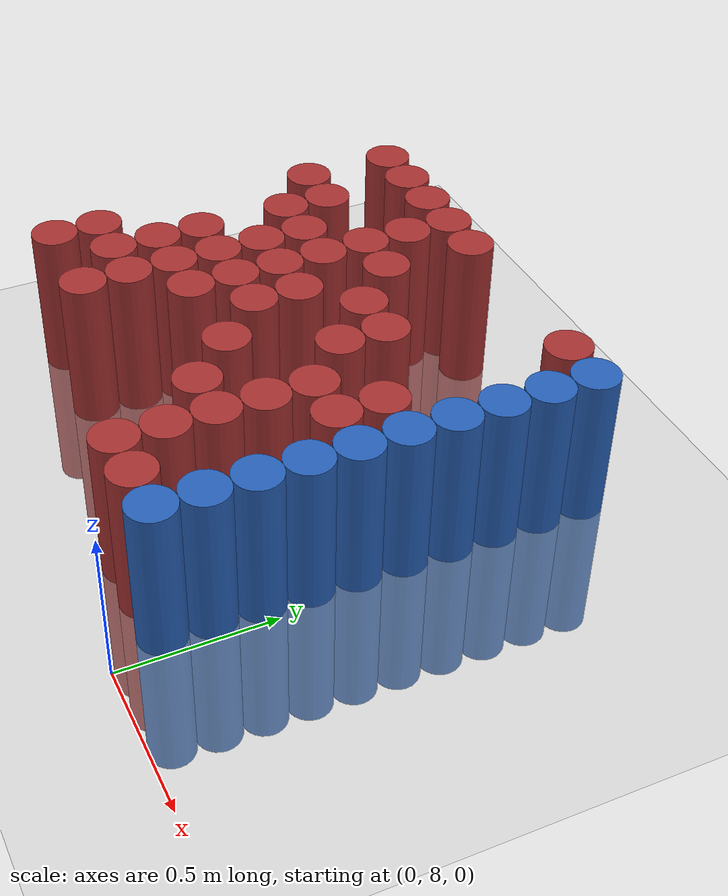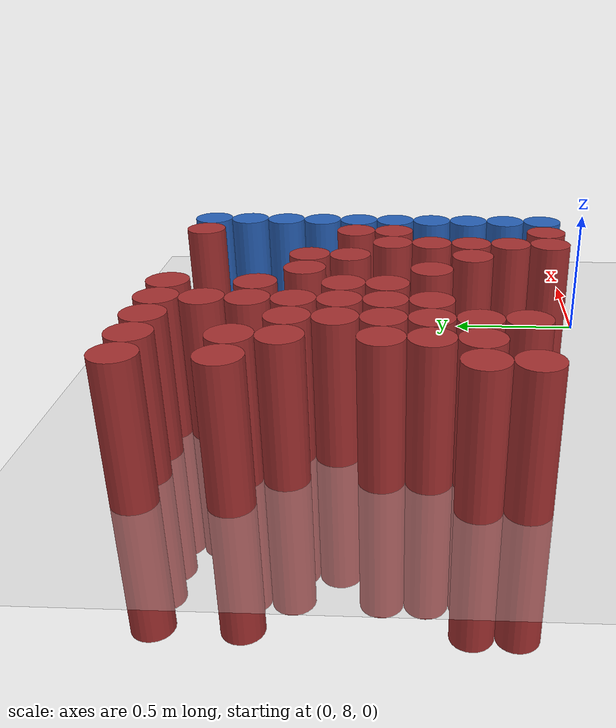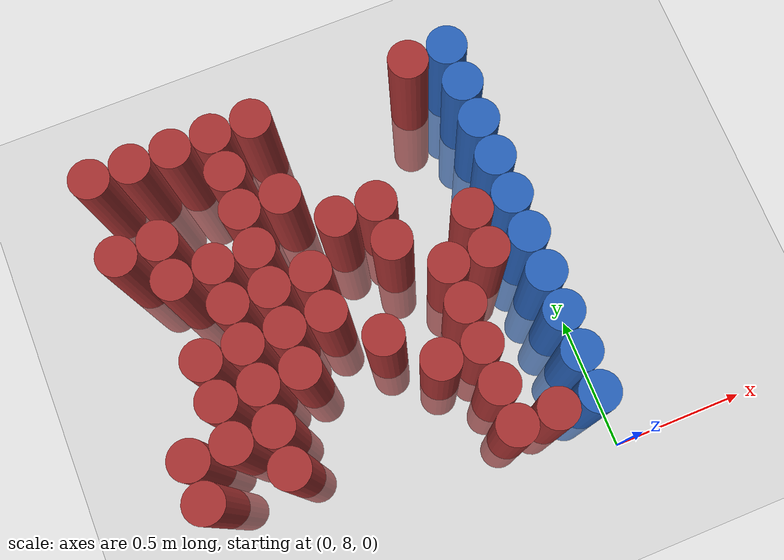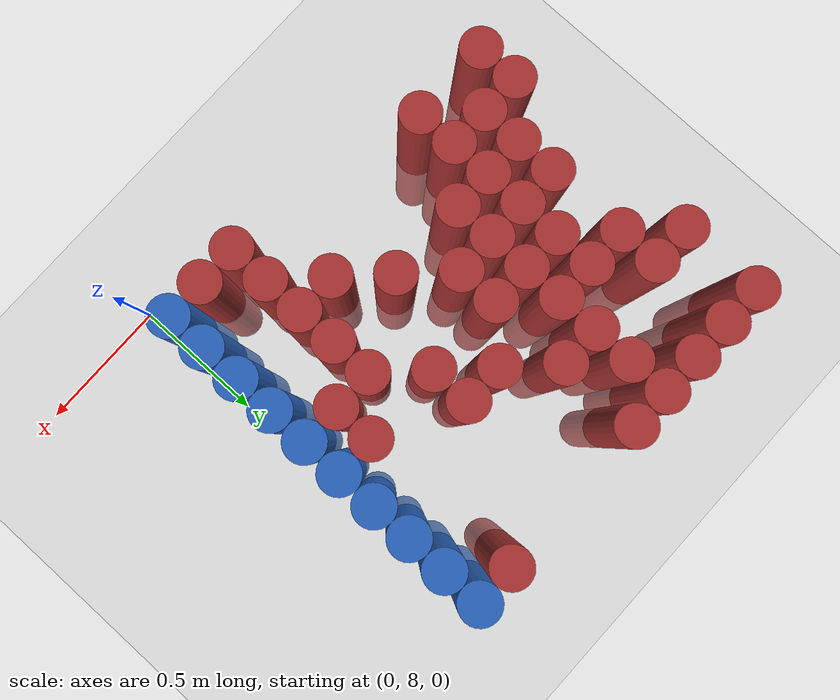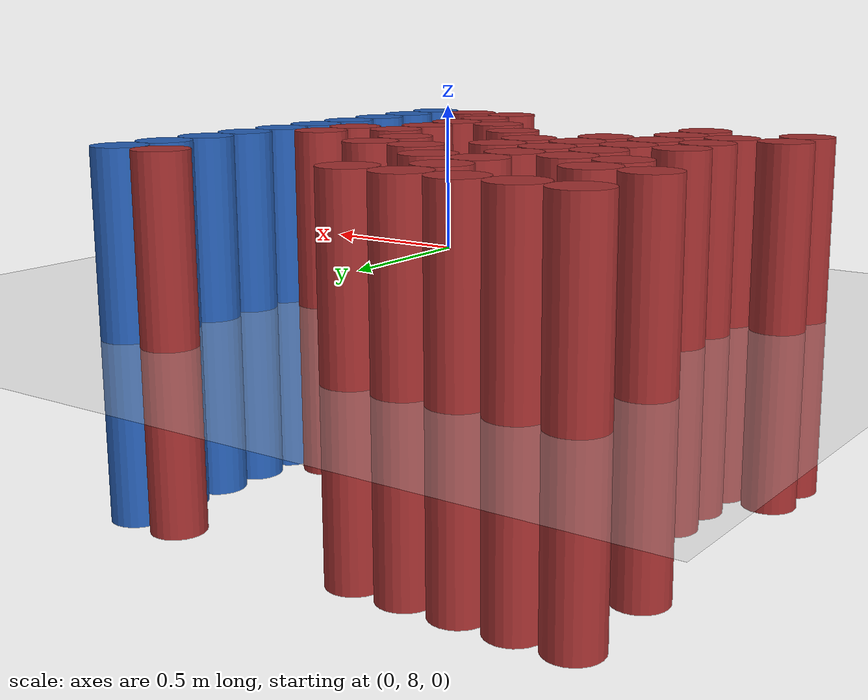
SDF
<sdf version="1.6">
 <world name="default">
  <model name="ground_plane">
   <static>1</static>
   <link name="link">
    <collision name="collision">
     <geometry><plane><normal>0 0 1</normal><size>100 100</size></plane></geometry>
     <surface><friction><ode><mu>100</mu><mu2>50</mu2></ode></friction></surface>
    </collision>
    <visual name="visual">
     <cast_shadows>0</cast_shadows>
     <geometry><plane><normal>0 0 1</normal><size>100 100</size></plane></geometry>
     <material>
      <script><uri>file://media/materials/scripts/gazebo.material</uri><name>Gazebo/Grey</name></script>
     </material>
    </visual>
   </link>
  </model>
  <model name="unit_cylinder_238">
   <static>1</static>
   <pose>-1.425000 8.325000 0.000000 0.000000 0.000000 0.000000</pose>
   <link name="link">
    <inertial>
     <mass>1</mass>
     <inertia><ixx>0.145833</ixx><ixy>0</ixy><ixz>0</ixz><iyy>0.145833</iyy><iyz>0</iyz><izz>0.125</izz></inertia>
    </inertial>
    <collision name="collision">
     <geometry><cylinder><radius>0.075000</radius><length>1</length></cylinder></geometry>
    </collision>
    <visual name="visual">
     <geometry><cylinder><radius>0.075000</radius><length>1</length></cylinder></geometry>
     <material>
      <ambient>0.648000 0.192000 0.192000 1</ambient>
      <diffuse>0.648000 0.192000 0.192000 1</diffuse>
     </material>
     <material>
      <script><name>Gazebo/Grey</name><uri>file://media/materials/scripts/gazebo.material</uri></script>
     </material>
    </visual>
   </link>
  </model>
  <model name="unit_cylinder_239">
   <static>1</static>
   <pose>-1.425000 8.475000 0.000000 0.000000 0.000000 0.000000</pose>
   <link name="link">
    <inertial>
     <mass>1</mass>
     <inertia><ixx>0.145833</ixx><ixy>0</ixy><ixz>0</ixz><iyy>0.145833</iyy><iyz>0</iyz><izz>0.125</izz></inertia>
    </inertial>
    <collision name="collision">
     <geometry><cylinder><radius>0.075000</radius><length>1</length></cylinder></geometry>
    </collision>
    <visual name="visual">
     <geometry><cylinder><radius>0.075000</radius><length>1</length></cylinder></geometry>
     <material>
      <ambient>0.648000 0.192000 0.192000 1</ambient>
      <diffuse>0.648000 0.192000 0.192000 1</diffuse>
     </material>
     <material>
      <script><name>Gazebo/Grey</name><uri>file://media/materials/scripts/gazebo.material</uri></script>
     </material>
    </visual>
   </link>
  </model>
  <model name="unit_cylinder_240">
   <static>1</static>
   <pose>-1.425000 9.225000 0.000000 0.000000 0.000000 0.000000</pose>
   <link name="link">
    <inertial>
     <mass>1</mass>
     <inertia><ixx>0.145833</ixx><ixy>0</ixy><ixz>0</ixz><iyy>0.145833</iyy><iyz>0</iyz><izz>0.125</izz></inertia>
    </inertial>
    <collision name="collision">
     <geometry><cylinder><radius>0.075000</radius><length>1</length></cylinder></geometry>
    </collision>
    <visual name="visual">
     <geometry><cylinder><radius>0.075000</radius><length>1</length></cylinder></geometry>
     <material>
      <ambient>0.648000 0.192000 0.192000 1</ambient>
      <diffuse>0.648000 0.192000 0.192000 1</diffuse>
     </material>
     <material>
      <script><name>Gazebo/Grey</name><uri>file://media/materials/scripts/gazebo.material</uri></script>
     </material>
    </visual>
   </link>
  </model>
  <model name="unit_cylinder_241">
   <static>1</static>
   <pose>-1.425000 9.525000 0.000000 0.000000 0.000000 0.000000</pose>
   <link name="link">
    <inertial>
     <mass>1</mass>
     <inertia><ixx>0.145833</ixx><ixy>0</ixy><ixz>0</ixz><iyy>0.145833</iyy><iyz>0</iyz><izz>0.125</izz></inertia>
    </inertial>
    <collision name="collision">
     <geometry><cylinder><radius>0.075000</radius><length>1</length></cylinder></geometry>
    </collision>
    <visual name="visual">
     <geometry><cylinder><radius>0.075000</radius><length>1</length></cylinder></geometry>
     <material>
      <ambient>0.648000 0.192000 0.192000 1</ambient>
      <diffuse>0.648000 0.192000 0.192000 1</diffuse>
     </material>
     <material>
      <script><name>Gazebo/Grey</name><uri>file://media/materials/scripts/gazebo.material</uri></script>
     </material>
    </visual>
   </link>
  </model>
  <model name="unit_cylinder_247">
   <static>1</static>
   <pose>-1.275000 8.475000 0.000000 0.000000 0.000000 0.000000</pose>
   <link name="link">
    <inertial>
     <mass>1</mass>
     <inertia><ixx>0.145833</ixx><ixy>0</ixy><ixz>0</ixz><iyy>0.145833</iyy><iyz>0</iyz><izz>0.125</izz></inertia>
    </inertial>
    <collision name="collision">
     <geometry><cylinder><radius>0.075000</radius><length>1</length></cylinder></geometry>
    </collision>
    <visual name="visual">
     <geometry><cylinder><radius>0.075000</radius><length>1</length></cylinder></geometry>
     <material>
      <ambient>0.648000 0.192000 0.192000 1</ambient>
      <diffuse>0.648000 0.192000 0.192000 1</diffuse>
     </material>
     <material>
      <script><name>Gazebo/Grey</name><uri>file://media/materials/scripts/gazebo.material</uri></script>
     </material>
    </visual>
   </link>
  </model>
  <model name="unit_cylinder_248">
   <static>1</static>
   <pose>-1.275000 8.625000 0.000000 0.000000 0.000000 0.000000</pose>
   <link name="link">
    <inertial>
     <mass>1</mass>
     <inertia><ixx>0.145833</ixx><ixy>0</ixy><ixz>0</ixz><iyy>0.145833</iyy><iyz>0</iyz><izz>0.125</izz></inertia>
    </inertial>
    <collision name="collision">
     <geometry><cylinder><radius>0.075000</radius><length>1</length></cylinder></geometry>
    </collision>
    <visual name="visual">
     <geometry><cylinder><radius>0.075000</radius><length>1</length></cylinder></geometry>
     <material>
      <ambient>0.648000 0.192000 0.192000 1</ambient>
      <diffuse>0.648000 0.192000 0.192000 1</diffuse>
     </material>
     <material>
      <script><name>Gazebo/Grey</name><uri>file://media/materials/scripts/gazebo.material</uri></script>
     </material>
    </visual>
   </link>
  </model>
  <model name="unit_cylinder_249">
   <static>1</static>
   <pose>-1.275000 8.775000 0.000000 0.000000 0.000000 0.000000</pose>
   <link name="link">
    <inertial>
     <mass>1</mass>
     <inertia><ixx>0.145833</ixx><ixy>0</ixy><ixz>0</ixz><iyy>0.145833</iyy><iyz>0</iyz><izz>0.125</izz></inertia>
    </inertial>
    <collision name="collision">
     <geometry><cylinder><radius>0.075000</radius><length>1</length></cylinder></geometry>
    </collision>
    <visual name="visual">
     <geometry><cylinder><radius>0.075000</radius><length>1</length></cylinder></geometry>
     <material>
      <ambient>0.648000 0.192000 0.192000 1</ambient>
      <diffuse>0.648000 0.192000 0.192000 1</diffuse>
     </material>
     <material>
      <script><name>Gazebo/Grey</name><uri>file://media/materials/scripts/gazebo.material</uri></script>
     </material>
    </visual>
   </link>
  </model>
  <model name="unit_cylinder_250">
   <static>1</static>
   <pose>-1.275000 9.075000 0.000000 0.000000 0.000000 0.000000</pose>
   <link name="link">
    <inertial>
     <mass>1</mass>
     <inertia><ixx>0.145833</ixx><ixy>0</ixy><ixz>0</ixz><iyy>0.145833</iyy><iyz>0</iyz><izz>0.125</izz></inertia>
    </inertial>
    <collision name="collision">
     <geometry><cylinder><radius>0.075000</radius><length>1</length></cylinder></geometry>
    </collision>
    <visual name="visual">
     <geometry><cylinder><radius>0.075000</radius><length>1</length></cylinder></geometry>
     <material>
      <ambient>0.648000 0.192000 0.192000 1</ambient>
      <diffuse>0.648000 0.192000 0.192000 1</diffuse>
     </material>
     <material>
      <script><name>Gazebo/Grey</name><uri>file://media/materials/scripts/gazebo.material</uri></script>
     </material>
    </visual>
   </link>
  </model>
  <model name="unit_cylinder_251">
   <static>1</static>
   <pose>-1.275000 9.225000 0.000000 0.000000 0.000000 0.000000</pose>
   <link name="link">
    <inertial>
     <mass>1</mass>
     <inertia><ixx>0.145833</ixx><ixy>0</ixy><ixz>0</ixz><iyy>0.145833</iyy><iyz>0</iyz><izz>0.125</izz></inertia>
    </inertial>
    <collision name="collision">
     <geometry><cylinder><radius>0.075000</radius><length>1</length></cylinder></geometry>
    </collision>
    <visual name="visual">
     <geometry><cylinder><radius>0.075000</radius><length>1</length></cylinder></geometry>
     <material>
      <ambient>0.648000 0.192000 0.192000 1</ambient>
      <diffuse>0.648000 0.192000 0.192000 1</diffuse>
     </material>
     <material>
      <script><name>Gazebo/Grey</name><uri>file://media/materials/scripts/gazebo.material</uri></script>
     </material>
    </visual>
   </link>
  </model>
  <model name="unit_cylinder_252">
   <static>1</static>
   <pose>-1.275000 9.525000 0.000000 0.000000 0.000000 0.000000</pose>
   <link name="link">
    <inertial>
     <mass>1</mass>
     <inertia><ixx>0.145833</ixx><ixy>0</ixy><ixz>0</ixz><iyy>0.145833</iyy><iyz>0</iyz><izz>0.125</izz></inertia>
    </inertial>
    <collision name="collision">
     <geometry><cylinder><radius>0.075000</radius><length>1</length></cylinder></geometry>
    </collision>
    <visual name="visual">
     <geometry><cylinder><radius>0.075000</radius><length>1</length></cylinder></geometry>
     <material>
      <ambient>0.648000 0.192000 0.192000 1</ambient>
      <diffuse>0.648000 0.192000 0.192000 1</diffuse>
     </material>
     <material>
      <script><name>Gazebo/Grey</name><uri>file://media/materials/scripts/gazebo.material</uri></script>
     </material>
    </visual>
   </link>
  </model>
  <model name="unit_cylinder_264">
   <static>1</static>
   <pose>-1.125000 8.325000 0.000000 0.000000 0.000000 0.000000</pose>
   <link name="link">
    <inertial>
     <mass>1</mass>
     <inertia><ixx>0.145833</ixx><ixy>0</ixy><ixz>0</ixz><iyy>0.145833</iyy><iyz>0</iyz><izz>0.125</izz></inertia>
    </inertial>
    <collision name="collision">
     <geometry><cylinder><radius>0.075000</radius><length>1</length></cylinder></geometry>
    </collision>
    <visual name="visual">
     <geometry><cylinder><radius>0.075000</radius><length>1</length></cylinder></geometry>
     <material>
      <ambient>0.648000 0.192000 0.192000 1</ambient>
      <diffuse>0.648000 0.192000 0.192000 1</diffuse>
     </material>
     <material>
      <script><name>Gazebo/Grey</name><uri>file://media/materials/scripts/gazebo.material</uri></script>
     </material>
    </visual>
   </link>
  </model>
  <model name="unit_cylinder_265">
   <static>1</static>
   <pose>-1.125000 8.475000 0.000000 0.000000 0.000000 0.000000</pose>
   <link name="link">
    <inertial>
     <mass>1</mass>
     <inertia><ixx>0.145833</ixx><ixy>0</ixy><ixz>0</ixz><iyy>0.145833</iyy><iyz>0</iyz><izz>0.125</izz></inertia>
    </inertial>
    <collision name="collision">
     <geometry><cylinder><radius>0.075000</radius><length>1</length></cylinder></geometry>
    </collision>
    <visual name="visual">
     <geometry><cylinder><radius>0.075000</radius><length>1</length></cylinder></geometry>
     <material>
      <ambient>0.648000 0.192000 0.192000 1</ambient>
      <diffuse>0.648000 0.192000 0.192000 1</diffuse>
     </material>
     <material>
      <script><name>Gazebo/Grey</name><uri>file://media/materials/scripts/gazebo.material</uri></script>
     </material>
    </visual>
   </link>
  </model>
  <model name="unit_cylinder_266">
   <static>1</static>
   <pose>-1.125000 8.625000 0.000000 0.000000 0.000000 0.000000</pose>
   <link name="link">
    <inertial>
     <mass>1</mass>
     <inertia><ixx>0.145833</ixx><ixy>0</ixy><ixz>0</ixz><iyy>0.145833</iyy><iyz>0</iyz><izz>0.125</izz></inertia>
    </inertial>
    <collision name="collision">
     <geometry><cylinder><radius>0.075000</radius><length>1</length></cylinder></geometry>
    </collision>
    <visual name="visual">
     <geometry><cylinder><radius>0.075000</radius><length>1</length></cylinder></geometry>
     <material>
      <ambient>0.648000 0.192000 0.192000 1</ambient>
      <diffuse>0.648000 0.192000 0.192000 1</diffuse>
     </material>
     <material>
      <script><name>Gazebo/Grey</name><uri>file://media/materials/scripts/gazebo.material</uri></script>
     </material>
    </visual>
   </link>
  </model>
  <model name="unit_cylinder_267">
   <static>1</static>
   <pose>-1.125000 8.775000 0.000000 0.000000 0.000000 0.000000</pose>
   <link name="link">
    <inertial>
     <mass>1</mass>
     <inertia><ixx>0.145833</ixx><ixy>0</ixy><ixz>0</ixz><iyy>0.145833</iyy><iyz>0</iyz><izz>0.125</izz></inertia>
    </inertial>
    <collision name="collision">
     <geometry><cylinder><radius>0.075000</radius><length>1</length></cylinder></geometry>
    </collision>
    <visual name="visual">
     <geometry><cylinder><radius>0.075000</radius><length>1</length></cylinder></geometry>
     <material>
      <ambient>0.648000 0.192000 0.192000 1</ambient>
      <diffuse>0.648000 0.192000 0.192000 1</diffuse>
     </material>
     <material>
      <script><name>Gazebo/Grey</name><uri>file://media/materials/scripts/gazebo.material</uri></script>
     </material>
    </visual>
   </link>
  </model>
  <model name="unit_cylinder_268">
   <static>1</static>
   <pose>-1.125000 8.925000 0.000000 0.000000 0.000000 0.000000</pose>
   <link name="link">
    <inertial>
     <mass>1</mass>
     <inertia><ixx>0.145833</ixx><ixy>0</ixy><ixz>0</ixz><iyy>0.145833</iyy><iyz>0</iyz><izz>0.125</izz></inertia>
    </inertial>
    <collision name="collision">
     <geometry><cylinder><radius>0.075000</radius><length>1</length></cylinder></geometry>
    </collision>
    <visual name="visual">
     <geometry><cylinder><radius>0.075000</radius><length>1</length></cylinder></geometry>
     <material>
      <ambient>0.648000 0.192000 0.192000 1</ambient>
      <diffuse>0.648000 0.192000 0.192000 1</diffuse>
     </material>
     <material>
      <script><name>Gazebo/Grey</name><uri>file://media/materials/scripts/gazebo.material</uri></script>
     </material>
    </visual>
   </link>
  </model>
  <model name="unit_cylinder_269">
   <static>1</static>
   <pose>-1.125000 9.075000 0.000000 0.000000 0.000000 0.000000</pose>
   <link name="link">
    <inertial>
     <mass>1</mass>
     <inertia><ixx>0.145833</ixx><ixy>0</ixy><ixz>0</ixz><iyy>0.145833</iyy><iyz>0</iyz><izz>0.125</izz></inertia>
    </inertial>
    <collision name="collision">
     <geometry><cylinder><radius>0.075000</radius><length>1</length></cylinder></geometry>
    </collision>
    <visual name="visual">
     <geometry><cylinder><radius>0.075000</radius><length>1</length></cylinder></geometry>
     <material>
      <ambient>0.648000 0.192000 0.192000 1</ambient>
      <diffuse>0.648000 0.192000 0.192000 1</diffuse>
     </material>
     <material>
      <script><name>Gazebo/Grey</name><uri>file://media/materials/scripts/gazebo.material</uri></script>
     </material>
    </visual>
   </link>
  </model>
  <model name="unit_cylinder_270">
   <static>1</static>
   <pose>-1.125000 9.525000 0.000000 0.000000 0.000000 0.000000</pose>
   <link name="link">
    <inertial>
     <mass>1</mass>
     <inertia><ixx>0.145833</ixx><ixy>0</ixy><ixz>0</ixz><iyy>0.145833</iyy><iyz>0</iyz><izz>0.125</izz></inertia>
    </inertial>
    <collision name="collision">
     <geometry><cylinder><radius>0.075000</radius><length>1</length></cylinder></geometry>
    </collision>
    <visual name="visual">
     <geometry><cylinder><radius>0.075000</radius><length>1</length></cylinder></geometry>
     <material>
      <ambient>0.648000 0.192000 0.192000 1</ambient>
      <diffuse>0.648000 0.192000 0.192000 1</diffuse>
     </material>
     <material>
      <script><name>Gazebo/Grey</name><uri>file://media/materials/scripts/gazebo.material</uri></script>
     </material>
    </visual>
   </link>
  </model>
  <model name="unit_cylinder_280">
   <static>1</static>
   <pose>-0.975000 8.625000 0.000000 0.000000 0.000000 0.000000</pose>
   <link name="link">
    <inertial>
     <mass>1</mass>
     <inertia><ixx>0.145833</ixx><ixy>0</ixy><ixz>0</ixz><iyy>0.145833</iyy><iyz>0</iyz><izz>0.125</izz></inertia>
    </inertial>
    <collision name="collision">
     <geometry><cylinder><radius>0.075000</radius><length>1</length></cylinder></geometry>
    </collision>
    <visual name="visual">
     <geometry><cylinder><radius>0.075000</radius><length>1</length></cylinder></geometry>
     <material>
      <ambient>0.648000 0.192000 0.192000 1</ambient>
      <diffuse>0.648000 0.192000 0.192000 1</diffuse>
     </material>
     <material>
      <script><name>Gazebo/Grey</name><uri>file://media/materials/scripts/gazebo.material</uri></script>
     </material>
    </visual>
   </link>
  </model>
  <model name="unit_cylinder_281">
   <static>1</static>
   <pose>-0.975000 8.775000 0.000000 0.000000 0.000000 0.000000</pose>
   <link name="link">
    <inertial>
     <mass>1</mass>
     <inertia><ixx>0.145833</ixx><ixy>0</ixy><ixz>0</ixz><iyy>0.145833</iyy><iyz>0</iyz><izz>0.125</izz></inertia>
    </inertial>
    <collision name="collision">
     <geometry><cylinder><radius>0.075000</radius><length>1</length></cylinder></geometry>
    </collision>
    <visual name="visual">
     <geometry><cylinder><radius>0.075000</radius><length>1</length></cylinder></geometry>
     <material>
      <ambient>0.648000 0.192000 0.192000 1</ambient>
      <diffuse>0.648000 0.192000 0.192000 1</diffuse>
     </material>
     <material>
      <script><name>Gazebo/Grey</name><uri>file://media/materials/scripts/gazebo.material</uri></script>
     </material>
    </visual>
   </link>
  </model>
  <model name="unit_cylinder_282">
   <static>1</static>
   <pose>-0.975000 8.925000 0.000000 0.000000 0.000000 0.000000</pose>
   <link name="link">
    <inertial>
     <mass>1</mass>
     <inertia><ixx>0.145833</ixx><ixy>0</ixy><ixz>0</ixz><iyy>0.145833</iyy><iyz>0</iyz><izz>0.125</izz></inertia>
    </inertial>
    <collision name="collision">
     <geometry><cylinder><radius>0.075000</radius><length>1</length></cylinder></geometry>
    </collision>
    <visual name="visual">
     <geometry><cylinder><radius>0.075000</radius><length>1</length></cylinder></geometry>
     <material>
      <ambient>0.648000 0.192000 0.192000 1</ambient>
      <diffuse>0.648000 0.192000 0.192000 1</diffuse>
     </material>
     <material>
      <script><name>Gazebo/Grey</name><uri>file://media/materials/scripts/gazebo.material</uri></script>
     </material>
    </visual>
   </link>
  </model>
  <model name="unit_cylinder_283">
   <static>1</static>
   <pose>-0.975000 9.075000 0.000000 0.000000 0.000000 0.000000</pose>
   <link name="link">
    <inertial>
     <mass>1</mass>
     <inertia><ixx>0.145833</ixx><ixy>0</ixy><ixz>0</ixz><iyy>0.145833</iyy><iyz>0</iyz><izz>0.125</izz></inertia>
    </inertial>
    <collision name="collision">
     <geometry><cylinder><radius>0.075000</radius><length>1</length></cylinder></geometry>
    </collision>
    <visual name="visual">
     <geometry><cylinder><radius>0.075000</radius><length>1</length></cylinder></geometry>
     <material>
      <ambient>0.648000 0.192000 0.192000 1</ambient>
      <diffuse>0.648000 0.192000 0.192000 1</diffuse>
     </material>
     <material>
      <script><name>Gazebo/Grey</name><uri>file://media/materials/scripts/gazebo.material</uri></script>
     </material>
    </visual>
   </link>
  </model>
  <model name="unit_cylinder_284">
   <static>1</static>
   <pose>-0.975000 9.225000 0.000000 0.000000 0.000000 0.000000</pose>
   <link name="link">
    <inertial>
     <mass>1</mass>
     <inertia><ixx>0.145833</ixx><ixy>0</ixy><ixz>0</ixz><iyy>0.145833</iyy><iyz>0</iyz><izz>0.125</izz></inertia>
    </inertial>
    <collision name="collision">
     <geometry><cylinder><radius>0.075000</radius><length>1</length></cylinder></geometry>
    </collision>
    <visual name="visual">
     <geometry><cylinder><radius>0.075000</radius><length>1</length></cylinder></geometry>
     <material>
      <ambient>0.648000 0.192000 0.192000 1</ambient>
      <diffuse>0.648000 0.192000 0.192000 1</diffuse>
     </material>
     <material>
      <script><name>Gazebo/Grey</name><uri>file://media/materials/scripts/gazebo.material</uri></script>
     </material>
    </visual>
   </link>
  </model>
  <model name="unit_cylinder_285">
   <static>1</static>
   <pose>-0.975000 9.375000 0.000000 0.000000 0.000000 0.000000</pose>
   <link name="link">
    <inertial>
     <mass>1</mass>
     <inertia><ixx>0.145833</ixx><ixy>0</ixy><ixz>0</ixz><iyy>0.145833</iyy><iyz>0</iyz><izz>0.125</izz></inertia>
    </inertial>
    <collision name="collision">
     <geometry><cylinder><radius>0.075000</radius><length>1</length></cylinder></geometry>
    </collision>
    <visual name="visual">
     <geometry><cylinder><radius>0.075000</radius><length>1</length></cylinder></geometry>
     <material>
      <ambient>0.648000 0.192000 0.192000 1</ambient>
      <diffuse>0.648000 0.192000 0.192000 1</diffuse>
     </material>
     <material>
      <script><name>Gazebo/Grey</name><uri>file://media/materials/scripts/gazebo.material</uri></script>
     </material>
    </visual>
   </link>
  </model>
  <model name="unit_cylinder_286">
   <static>1</static>
   <pose>-0.975000 9.525000 0.000000 0.000000 0.000000 0.000000</pose>
   <link name="link">
    <inertial>
     <mass>1</mass>
     <inertia><ixx>0.145833</ixx><ixy>0</ixy><ixz>0</ixz><iyy>0.145833</iyy><iyz>0</iyz><izz>0.125</izz></inertia>
    </inertial>
    <collision name="collision">
     <geometry><cylinder><radius>0.075000</radius><length>1</length></cylinder></geometry>
    </collision>
    <visual name="visual">
     <geometry><cylinder><radius>0.075000</radius><length>1</length></cylinder></geometry>
     <material>
      <ambient>0.648000 0.192000 0.192000 1</ambient>
      <diffuse>0.648000 0.192000 0.192000 1</diffuse>
     </material>
     <material>
      <script><name>Gazebo/Grey</name><uri>file://media/materials/scripts/gazebo.material</uri></script>
     </material>
    </visual>
   </link>
  </model>
  <model name="unit_cylinder_289">
   <static>1</static>
   <pose>-0.825000 8.775000 0.000000 0.000000 0.000000 0.000000</pose>
   <link name="link">
    <inertial>
     <mass>1</mass>
     <inertia><ixx>0.145833</ixx><ixy>0</ixy><ixz>0</ixz><iyy>0.145833</iyy><iyz>0</iyz><izz>0.125</izz></inertia>
    </inertial>
    <collision name="collision">
     <geometry><cylinder><radius>0.075000</radius><length>1</length></cylinder></geometry>
    </collision>
    <visual name="visual">
     <geometry><cylinder><radius>0.075000</radius><length>1</length></cylinder></geometry>
     <material>
      <ambient>0.648000 0.192000 0.192000 1</ambient>
      <diffuse>0.648000 0.192000 0.192000 1</diffuse>
     </material>
     <material>
      <script><name>Gazebo/Grey</name><uri>file://media/materials/scripts/gazebo.material</uri></script>
     </material>
    </visual>
   </link>
  </model>
  <model name="unit_cylinder_290">
   <static>1</static>
   <pose>-0.825000 8.925000 0.000000 0.000000 0.000000 0.000000</pose>
   <link name="link">
    <inertial>
     <mass>1</mass>
     <inertia><ixx>0.145833</ixx><ixy>0</ixy><ixz>0</ixz><iyy>0.145833</iyy><iyz>0</iyz><izz>0.125</izz></inertia>
    </inertial>
    <collision name="collision">
     <geometry><cylinder><radius>0.075000</radius><length>1</length></cylinder></geometry>
    </collision>
    <visual name="visual">
     <geometry><cylinder><radius>0.075000</radius><length>1</length></cylinder></geometry>
     <material>
      <ambient>0.648000 0.192000 0.192000 1</ambient>
      <diffuse>0.648000 0.192000 0.192000 1</diffuse>
     </material>
     <material>
      <script><name>Gazebo/Grey</name><uri>file://media/materials/scripts/gazebo.material</uri></script>
     </material>
    </visual>
   </link>
  </model>
  <model name="unit_cylinder_291">
   <static>1</static>
   <pose>-0.825000 9.225000 0.000000 0.000000 0.000000 0.000000</pose>
   <link name="link">
    <inertial>
     <mass>1</mass>
     <inertia><ixx>0.145833</ixx><ixy>0</ixy><ixz>0</ixz><iyy>0.145833</iyy><iyz>0</iyz><izz>0.125</izz></inertia>
    </inertial>
    <collision name="collision">
     <geometry><cylinder><radius>0.075000</radius><length>1</length></cylinder></geometry>
    </collision>
    <visual name="visual">
     <geometry><cylinder><radius>0.075000</radius><length>1</length></cylinder></geometry>
     <material>
      <ambient>0.648000 0.192000 0.192000 1</ambient>
      <diffuse>0.648000 0.192000 0.192000 1</diffuse>
     </material>
     <material>
      <script><name>Gazebo/Grey</name><uri>file://media/materials/scripts/gazebo.material</uri></script>
     </material>
    </visual>
   </link>
  </model>
  <model name="unit_cylinder_292">
   <static>1</static>
   <pose>-0.825000 9.525000 0.000000 0.000000 0.000000 0.000000</pose>
   <link name="link">
    <inertial>
     <mass>1</mass>
     <inertia><ixx>0.145833</ixx><ixy>0</ixy><ixz>0</ixz><iyy>0.145833</iyy><iyz>0</iyz><izz>0.125</izz></inertia>
    </inertial>
    <collision name="collision">
     <geometry><cylinder><radius>0.075000</radius><length>1</length></cylinder></geometry>
    </collision>
    <visual name="visual">
     <geometry><cylinder><radius>0.075000</radius><length>1</length></cylinder></geometry>
     <material>
      <ambient>0.648000 0.192000 0.192000 1</ambient>
      <diffuse>0.648000 0.192000 0.192000 1</diffuse>
     </material>
     <material>
      <script><name>Gazebo/Grey</name><uri>file://media/materials/scripts/gazebo.material</uri></script>
     </material>
    </visual>
   </link>
  </model>
  <model name="unit_cylinder_294">
   <static>1</static>
   <pose>-0.675000 8.625000 0.000000 0.000000 0.000000 0.000000</pose>
   <link name="link">
    <inertial>
     <mass>1</mass>
     <inertia><ixx>0.145833</ixx><ixy>0</ixy><ixz>0</ixz><iyy>0.145833</iyy><iyz>0</iyz><izz>0.125</izz></inertia>
    </inertial>
    <collision name="collision">
     <geometry><cylinder><radius>0.075000</radius><length>1</length></cylinder></geometry>
    </collision>
    <visual name="visual">
     <geometry><cylinder><radius>0.075000</radius><length>1</length></cylinder></geometry>
     <material>
      <ambient>0.648000 0.192000 0.192000 1</ambient>
      <diffuse>0.648000 0.192000 0.192000 1</diffuse>
     </material>
     <material>
      <script><name>Gazebo/Grey</name><uri>file://media/materials/scripts/gazebo.material</uri></script>
     </material>
    </visual>
   </link>
  </model>
  <model name="unit_cylinder_295">
   <static>1</static>
   <pose>-0.675000 9.075000 0.000000 0.000000 0.000000 0.000000</pose>
   <link name="link">
    <inertial>
     <mass>1</mass>
     <inertia><ixx>0.145833</ixx><ixy>0</ixy><ixz>0</ixz><iyy>0.145833</iyy><iyz>0</iyz><izz>0.125</izz></inertia>
    </inertial>
    <collision name="collision">
     <geometry><cylinder><radius>0.075000</radius><length>1</length></cylinder></geometry>
    </collision>
    <visual name="visual">
     <geometry><cylinder><radius>0.075000</radius><length>1</length></cylinder></geometry>
     <material>
      <ambient>0.648000 0.192000 0.192000 1</ambient>
      <diffuse>0.648000 0.192000 0.192000 1</diffuse>
     </material>
     <material>
      <script><name>Gazebo/Grey</name><uri>file://media/materials/scripts/gazebo.material</uri></script>
     </material>
    </visual>
   </link>
  </model>
  <model name="unit_cylinder_300">
   <static>1</static>
   <pose>-0.525000 8.475000 0.000000 0.000000 0.000000 0.000000</pose>
   <link name="link">
    <inertial>
     <mass>1</mass>
     <inertia><ixx>0.145833</ixx><ixy>0</ixy><ixz>0</ixz><iyy>0.145833</iyy><iyz>0</iyz><izz>0.125</izz></inertia>
    </inertial>
    <collision name="collision">
     <geometry><cylinder><radius>0.075000</radius><length>1</length></cylinder></geometry>
    </collision>
    <visual name="visual">
     <geometry><cylinder><radius>0.075000</radius><length>1</length></cylinder></geometry>
     <material>
      <ambient>0.648000 0.192000 0.192000 1</ambient>
      <diffuse>0.648000 0.192000 0.192000 1</diffuse>
     </material>
     <material>
      <script><name>Gazebo/Grey</name><uri>file://media/materials/scripts/gazebo.material</uri></script>
     </material>
    </visual>
   </link>
  </model>
  <model name="unit_cylinder_301">
   <static>1</static>
   <pose>-0.525000 8.925000 0.000000 0.000000 0.000000 0.000000</pose>
   <link name="link">
    <inertial>
     <mass>1</mass>
     <inertia><ixx>0.145833</ixx><ixy>0</ixy><ixz>0</ixz><iyy>0.145833</iyy><iyz>0</iyz><izz>0.125</izz></inertia>
    </inertial>
    <collision name="collision">
     <geometry><cylinder><radius>0.075000</radius><length>1</length></cylinder></geometry>
    </collision>
    <visual name="visual">
     <geometry><cylinder><radius>0.075000</radius><length>1</length></cylinder></geometry>
     <material>
      <ambient>0.648000 0.192000 0.192000 1</ambient>
      <diffuse>0.648000 0.192000 0.192000 1</diffuse>
     </material>
     <material>
      <script><name>Gazebo/Grey</name><uri>file://media/materials/scripts/gazebo.material</uri></script>
     </material>
    </visual>
   </link>
  </model>
  <model name="unit_cylinder_302">
   <static>1</static>
   <pose>-0.525000 9.075000 0.000000 0.000000 0.000000 0.000000</pose>
   <link name="link">
    <inertial>
     <mass>1</mass>
     <inertia><ixx>0.145833</ixx><ixy>0</ixy><ixz>0</ixz><iyy>0.145833</iyy><iyz>0</iyz><izz>0.125</izz></inertia>
    </inertial>
    <collision name="collision">
     <geometry><cylinder><radius>0.075000</radius><length>1</length></cylinder></geometry>
    </collision>
    <visual name="visual">
     <geometry><cylinder><radius>0.075000</radius><length>1</length></cylinder></geometry>
     <material>
      <ambient>0.648000 0.192000 0.192000 1</ambient>
      <diffuse>0.648000 0.192000 0.192000 1</diffuse>
     </material>
     <material>
      <script><name>Gazebo/Grey</name><uri>file://media/materials/scripts/gazebo.material</uri></script>
     </material>
    </visual>
   </link>
  </model>
  <model name="unit_cylinder_309">
   <static>1</static>
   <pose>-0.375000 8.175000 0.000000 0.000000 0.000000 0.000000</pose>
   <link name="link">
    <inertial>
     <mass>1</mass>
     <inertia><ixx>0.145833</ixx><ixy>0</ixy><ixz>0</ixz><iyy>0.145833</iyy><iyz>0</iyz><izz>0.125</izz></inertia>
    </inertial>
    <collision name="collision">
     <geometry><cylinder><radius>0.075000</radius><length>1</length></cylinder></geometry>
    </collision>
    <visual name="visual">
     <geometry><cylinder><radius>0.075000</radius><length>1</length></cylinder></geometry>
     <material>
      <ambient>0.648000 0.192000 0.192000 1</ambient>
      <diffuse>0.648000 0.192000 0.192000 1</diffuse>
     </material>
     <material>
      <script><name>Gazebo/Grey</name><uri>file://media/materials/scripts/gazebo.material</uri></script>
     </material>
    </visual>
   </link>
  </model>
  <model name="unit_cylinder_310">
   <static>1</static>
   <pose>-0.375000 8.325000 0.000000 0.000000 0.000000 0.000000</pose>
   <link name="link">
    <inertial>
     <mass>1</mass>
     <inertia><ixx>0.145833</ixx><ixy>0</ixy><ixz>0</ixz><iyy>0.145833</iyy><iyz>0</iyz><izz>0.125</izz></inertia>
    </inertial>
    <collision name="collision">
     <geometry><cylinder><radius>0.075000</radius><length>1</length></cylinder></geometry>
    </collision>
    <visual name="visual">
     <geometry><cylinder><radius>0.075000</radius><length>1</length></cylinder></geometry>
     <material>
      <ambient>0.648000 0.192000 0.192000 1</ambient>
      <diffuse>0.648000 0.192000 0.192000 1</diffuse>
     </material>
     <material>
      <script><name>Gazebo/Grey</name><uri>file://media/materials/scripts/gazebo.material</uri></script>
     </material>
    </visual>
   </link>
  </model>
  <model name="unit_cylinder_311">
   <static>1</static>
   <pose>-0.375000 8.475000 0.000000 0.000000 0.000000 0.000000</pose>
   <link name="link">
    <inertial>
     <mass>1</mass>
     <inertia><ixx>0.145833</ixx><ixy>0</ixy><ixz>0</ixz><iyy>0.145833</iyy><iyz>0</iyz><izz>0.125</izz></inertia>
    </inertial>
    <collision name="collision">
     <geometry><cylinder><radius>0.075000</radius><length>1</length></cylinder></geometry>
    </collision>
    <visual name="visual">
     <geometry><cylinder><radius>0.075000</radius><length>1</length></cylinder></geometry>
     <material>
      <ambient>0.648000 0.192000 0.192000 1</ambient>
      <diffuse>0.648000 0.192000 0.192000 1</diffuse>
     </material>
     <material>
      <script><name>Gazebo/Grey</name><uri>file://media/materials/scripts/gazebo.material</uri></script>
     </material>
    </visual>
   </link>
  </model>
  <model name="unit_cylinder_312">
   <static>1</static>
   <pose>-0.375000 8.625000 0.000000 0.000000 0.000000 0.000000</pose>
   <link name="link">
    <inertial>
     <mass>1</mass>
     <inertia><ixx>0.145833</ixx><ixy>0</ixy><ixz>0</ixz><iyy>0.145833</iyy><iyz>0</iyz><izz>0.125</izz></inertia>
    </inertial>
    <collision name="collision">
     <geometry><cylinder><radius>0.075000</radius><length>1</length></cylinder></geometry>
    </collision>
    <visual name="visual">
     <geometry><cylinder><radius>0.075000</radius><length>1</length></cylinder></geometry>
     <material>
      <ambient>0.648000 0.192000 0.192000 1</ambient>
      <diffuse>0.648000 0.192000 0.192000 1</diffuse>
     </material>
     <material>
      <script><name>Gazebo/Grey</name><uri>file://media/materials/scripts/gazebo.material</uri></script>
     </material>
    </visual>
   </link>
  </model>
  <model name="unit_cylinder_313">
   <static>1</static>
   <pose>-0.375000 8.775000 0.000000 0.000000 0.000000 0.000000</pose>
   <link name="link">
    <inertial>
     <mass>1</mass>
     <inertia><ixx>0.145833</ixx><ixy>0</ixy><ixz>0</ixz><iyy>0.145833</iyy><iyz>0</iyz><izz>0.125</izz></inertia>
    </inertial>
    <collision name="collision">
     <geometry><cylinder><radius>0.075000</radius><length>1</length></cylinder></geometry>
    </collision>
    <visual name="visual">
     <geometry><cylinder><radius>0.075000</radius><length>1</length></cylinder></geometry>
     <material>
      <ambient>0.648000 0.192000 0.192000 1</ambient>
      <diffuse>0.648000 0.192000 0.192000 1</diffuse>
     </material>
     <material>
      <script><name>Gazebo/Grey</name><uri>file://media/materials/scripts/gazebo.material</uri></script>
     </material>
    </visual>
   </link>
  </model>
  <model name="unit_cylinder_327">
   <static>1</static>
   <pose>-0.225000 8.175000 0.000000 0.000000 0.000000 0.000000</pose>
   <link name="link">
    <inertial>
     <mass>1</mass>
     <inertia><ixx>0.145833</ixx><ixy>0</ixy><ixz>0</ixz><iyy>0.145833</iyy><iyz>0</iyz><izz>0.125</izz></inertia>
    </inertial>
    <collision name="collision">
     <geometry><cylinder><radius>0.075000</radius><length>1</length></cylinder></geometry>
    </collision>
    <visual name="visual">
     <geometry><cylinder><radius>0.075000</radius><length>1</length></cylinder></geometry>
     <material>
      <ambient>0.648000 0.192000 0.192000 1</ambient>
      <diffuse>0.648000 0.192000 0.192000 1</diffuse>
     </material>
     <material>
      <script><name>Gazebo/Grey</name><uri>file://media/materials/scripts/gazebo.material</uri></script>
     </material>
    </visual>
   </link>
  </model>
  <model name="unit_cylinder_328">
   <static>1</static>
   <pose>-0.225000 8.775000 0.000000 0.000000 0.000000 0.000000</pose>
   <link name="link">
    <inertial>
     <mass>1</mass>
     <inertia><ixx>0.145833</ixx><ixy>0</ixy><ixz>0</ixz><iyy>0.145833</iyy><iyz>0</iyz><izz>0.125</izz></inertia>
    </inertial>
    <collision name="collision">
     <geometry><cylinder><radius>0.075000</radius><length>1</length></cylinder></geometry>
    </collision>
    <visual name="visual">
     <geometry><cylinder><radius>0.075000</radius><length>1</length></cylinder></geometry>
     <material>
      <ambient>0.648000 0.192000 0.192000 1</ambient>
      <diffuse>0.648000 0.192000 0.192000 1</diffuse>
     </material>
     <material>
      <script><name>Gazebo/Grey</name><uri>file://media/materials/scripts/gazebo.material</uri></script>
     </material>
    </visual>
   </link>
  </model>
  <model name="unit_cylinder_329">
   <static>1</static>
   <pose>-0.225000 8.925000 0.000000 0.000000 0.000000 0.000000</pose>
   <link name="link">
    <inertial>
     <mass>1</mass>
     <inertia><ixx>0.145833</ixx><ixy>0</ixy><ixz>0</ixz><iyy>0.145833</iyy><iyz>0</iyz><izz>0.125</izz></inertia>
    </inertial>
    <collision name="collision">
     <geometry><cylinder><radius>0.075000</radius><length>1</length></cylinder></geometry>
    </collision>
    <visual name="visual">
     <geometry><cylinder><radius>0.075000</radius><length>1</length></cylinder></geometry>
     <material>
      <ambient>0.648000 0.192000 0.192000 1</ambient>
      <diffuse>0.648000 0.192000 0.192000 1</diffuse>
     </material>
     <material>
      <script><name>Gazebo/Grey</name><uri>file://media/materials/scripts/gazebo.material</uri></script>
     </material>
    </visual>
   </link>
  </model>
  <model name="unit_cylinder_330">
   <static>1</static>
   <pose>-0.225000 9.525000 0.000000 0.000000 0.000000 0.000000</pose>
   <link name="link">
    <inertial>
     <mass>1</mass>
     <inertia><ixx>0.145833</ixx><ixy>0</ixy><ixz>0</ixz><iyy>0.145833</iyy><iyz>0</iyz><izz>0.125</izz></inertia>
    </inertial>
    <collision name="collision">
     <geometry><cylinder><radius>0.075000</radius><length>1</length></cylinder></geometry>
    </collision>
    <visual name="visual">
     <geometry><cylinder><radius>0.075000</radius><length>1</length></cylinder></geometry>
     <material>
      <ambient>0.648000 0.192000 0.192000 1</ambient>
      <diffuse>0.648000 0.192000 0.192000 1</diffuse>
     </material>
     <material>
      <script><name>Gazebo/Grey</name><uri>file://media/materials/scripts/gazebo.material</uri></script>
     </material>
    </visual>
   </link>
  </model>
  <model name="unit_cylinder_351">
   <static>1</static>
   <pose>-0.075000 8.175000 0.000000 0.000000 0.000000 0.000000</pose>
   <link name="link">
    <inertial>
     <mass>1</mass>
     <inertia><ixx>0.145833</ixx><ixy>0</ixy><ixz>0</ixz><iyy>0.145833</iyy><iyz>0</iyz><izz>0.125</izz></inertia>
    </inertial>
    <collision name="collision">
     <geometry><cylinder><radius>0.075000</radius><length>1</length></cylinder></geometry>
    </collision>
    <visual name="visual">
     <geometry><cylinder><radius>0.075000</radius><length>1</length></cylinder></geometry>
     <material>
      <ambient>0.152000 0.379000 0.720000 1</ambient>
      <diffuse>0.152000 0.379000 0.720000 1</diffuse>
     </material>
     <material>
      <script><name>Gazebo/Grey</name><uri>file://media/materials/scripts/gazebo.material</uri></script>
     </material>
    </visual>
   </link>
  </model>
  <model name="unit_cylinder_352">
   <static>1</static>
   <pose>-0.075000 8.325000 0.000000 0.000000 0.000000 0.000000</pose>
   <link name="link">
    <inertial>
     <mass>1</mass>
     <inertia><ixx>0.145833</ixx><ixy>0</ixy><ixz>0</ixz><iyy>0.145833</iyy><iyz>0</iyz><izz>0.125</izz></inertia>
    </inertial>
    <collision name="collision">
     <geometry><cylinder><radius>0.075000</radius><length>1</length></cylinder></geometry>
    </collision>
    <visual name="visual">
     <geometry><cylinder><radius>0.075000</radius><length>1</length></cylinder></geometry>
     <material>
      <ambient>0.152000 0.379000 0.720000 1</ambient>
      <diffuse>0.152000 0.379000 0.720000 1</diffuse>
     </material>
     <material>
      <script><name>Gazebo/Grey</name><uri>file://media/materials/scripts/gazebo.material</uri></script>
     </material>
    </visual>
   </link>
  </model>
  <model name="unit_cylinder_353">
   <static>1</static>
   <pose>-0.075000 8.475000 0.000000 0.000000 0.000000 0.000000</pose>
   <link name="link">
    <inertial>
     <mass>1</mass>
     <inertia><ixx>0.145833</ixx><ixy>0</ixy><ixz>0</ixz><iyy>0.145833</iyy><iyz>0</iyz><izz>0.125</izz></inertia>
    </inertial>
    <collision name="collision">
     <geometry><cylinder><radius>0.075000</radius><length>1</length></cylinder></geometry>
    </collision>
    <visual name="visual">
     <geometry><cylinder><radius>0.075000</radius><length>1</length></cylinder></geometry>
     <material>
      <ambient>0.152000 0.379000 0.720000 1</ambient>
      <diffuse>0.152000 0.379000 0.720000 1</diffuse>
     </material>
     <material>
      <script><name>Gazebo/Grey</name><uri>file://media/materials/scripts/gazebo.material</uri></script>
     </material>
    </visual>
   </link>
  </model>
  <model name="unit_cylinder_354">
   <static>1</static>
   <pose>-0.075000 8.625000 0.000000 0.000000 0.000000 0.000000</pose>
   <link name="link">
    <inertial>
     <mass>1</mass>
     <inertia><ixx>0.145833</ixx><ixy>0</ixy><ixz>0</ixz><iyy>0.145833</iyy><iyz>0</iyz><izz>0.125</izz></inertia>
    </inertial>
    <collision name="collision">
     <geometry><cylinder><radius>0.075000</radius><length>1</length></cylinder></geometry>
    </collision>
    <visual name="visual">
     <geometry><cylinder><radius>0.075000</radius><length>1</length></cylinder></geometry>
     <material>
      <ambient>0.152000 0.379000 0.720000 1</ambient>
      <diffuse>0.152000 0.379000 0.720000 1</diffuse>
     </material>
     <material>
      <script><name>Gazebo/Grey</name><uri>file://media/materials/scripts/gazebo.material</uri></script>
     </material>
    </visual>
   </link>
  </model>
  <model name="unit_cylinder_355">
   <static>1</static>
   <pose>-0.075000 8.775000 0.000000 0.000000 0.000000 0.000000</pose>
   <link name="link">
    <inertial>
     <mass>1</mass>
     <inertia><ixx>0.145833</ixx><ixy>0</ixy><ixz>0</ixz><iyy>0.145833</iyy><iyz>0</iyz><izz>0.125</izz></inertia>
    </inertial>
    <collision name="collision">
     <geometry><cylinder><radius>0.075000</radius><length>1</length></cylinder></geometry>
    </collision>
    <visual name="visual">
     <geometry><cylinder><radius>0.075000</radius><length>1</length></cylinder></geometry>
     <material>
      <ambient>0.152000 0.379000 0.720000 1</ambient>
      <diffuse>0.152000 0.379000 0.720000 1</diffuse>
     </material>
     <material>
      <script><name>Gazebo/Grey</name><uri>file://media/materials/scripts/gazebo.material</uri></script>
     </material>
    </visual>
   </link>
  </model>
  <model name="unit_cylinder_356">
   <static>1</static>
   <pose>-0.075000 8.925000 0.000000 0.000000 0.000000 0.000000</pose>
   <link name="link">
    <inertial>
     <mass>1</mass>
     <inertia><ixx>0.145833</ixx><ixy>0</ixy><ixz>0</ixz><iyy>0.145833</iyy><iyz>0</iyz><izz>0.125</izz></inertia>
    </inertial>
    <collision name="collision">
     <geometry><cylinder><radius>0.075000</radius><length>1</length></cylinder></geometry>
    </collision>
    <visual name="visual">
     <geometry><cylinder><radius>0.075000</radius><length>1</length></cylinder></geometry>
     <material>
      <ambient>0.152000 0.379000 0.720000 1</ambient>
      <diffuse>0.152000 0.379000 0.720000 1</diffuse>
     </material>
     <material>
      <script><name>Gazebo/Grey</name><uri>file://media/materials/scripts/gazebo.material</uri></script>
     </material>
    </visual>
   </link>
  </model>
  <model name="unit_cylinder_357">
   <static>1</static>
   <pose>-0.075000 9.075000 0.000000 0.000000 0.000000 0.000000</pose>
   <link name="link">
    <inertial>
     <mass>1</mass>
     <inertia><ixx>0.145833</ixx><ixy>0</ixy><ixz>0</ixz><iyy>0.145833</iyy><iyz>0</iyz><izz>0.125</izz></inertia>
    </inertial>
    <collision name="collision">
     <geometry><cylinder><radius>0.075000</radius><length>1</length></cylinder></geometry>
    </collision>
    <visual name="visual">
     <geometry><cylinder><radius>0.075000</radius><length>1</length></cylinder></geometry>
     <material>
      <ambient>0.152000 0.379000 0.720000 1</ambient>
      <diffuse>0.152000 0.379000 0.720000 1</diffuse>
     </material>
     <material>
      <script><name>Gazebo/Grey</name><uri>file://media/materials/scripts/gazebo.material</uri></script>
     </material>
    </visual>
   </link>
  </model>
  <model name="unit_cylinder_358">
   <static>1</static>
   <pose>-0.075000 9.225000 0.000000 0.000000 0.000000 0.000000</pose>
   <link name="link">
    <inertial>
     <mass>1</mass>
     <inertia><ixx>0.145833</ixx><ixy>0</ixy><ixz>0</ixz><iyy>0.145833</iyy><iyz>0</iyz><izz>0.125</izz></inertia>
    </inertial>
    <collision name="collision">
     <geometry><cylinder><radius>0.075000</radius><length>1</length></cylinder></geometry>
    </collision>
    <visual name="visual">
     <geometry><cylinder><radius>0.075000</radius><length>1</length></cylinder></geometry>
     <material>
      <ambient>0.152000 0.379000 0.720000 1</ambient>
      <diffuse>0.152000 0.379000 0.720000 1</diffuse>
     </material>
     <material>
      <script><name>Gazebo/Grey</name><uri>file://media/materials/scripts/gazebo.material</uri></script>
     </material>
    </visual>
   </link>
  </model>
  <model name="unit_cylinder_359">
   <static>1</static>
   <pose>-0.075000 9.375000 0.000000 0.000000 0.000000 0.000000</pose>
   <link name="link">
    <inertial>
     <mass>1</mass>
     <inertia><ixx>0.145833</ixx><ixy>0</ixy><ixz>0</ixz><iyy>0.145833</iyy><iyz>0</iyz><izz>0.125</izz></inertia>
    </inertial>
    <collision name="collision">
     <geometry><cylinder><radius>0.075000</radius><length>1</length></cylinder></geometry>
    </collision>
    <visual name="visual">
     <geometry><cylinder><radius>0.075000</radius><length>1</length></cylinder></geometry>
     <material>
      <ambient>0.152000 0.379000 0.720000 1</ambient>
      <diffuse>0.152000 0.379000 0.720000 1</diffuse>
     </material>
     <material>
      <script><name>Gazebo/Grey</name><uri>file://media/materials/scripts/gazebo.material</uri></script>
     </material>
    </visual>
   </link>
  </model>
  <model name="unit_cylinder_360">
   <static>1</static>
   <pose>-0.075000 9.525000 0.000000 0.000000 0.000000 0.000000</pose>
   <link name="link">
    <inertial>
     <mass>1</mass>
     <inertia><ixx>0.145833</ixx><ixy>0</ixy><ixz>0</ixz><iyy>0.145833</iyy><iyz>0</iyz><izz>0.125</izz></inertia>
    </inertial>
    <collision name="collision">
     <geometry><cylinder><radius>0.075000</radius><length>1</length></cylinder></geometry>
    </collision>
    <visual name="visual">
     <geometry><cylinder><radius>0.075000</radius><length>1</length></cylinder></geometry>
     <material>
      <ambient>0.152000 0.379000 0.720000 1</ambient>
      <diffuse>0.152000 0.379000 0.720000 1</diffuse>
     </material>
     <material>
      <script><name>Gazebo/Grey</name><uri>file://media/materials/scripts/gazebo.material</uri></script>
     </material>
    </visual>
   </link>
  </model>
 </world>
</sdf>
